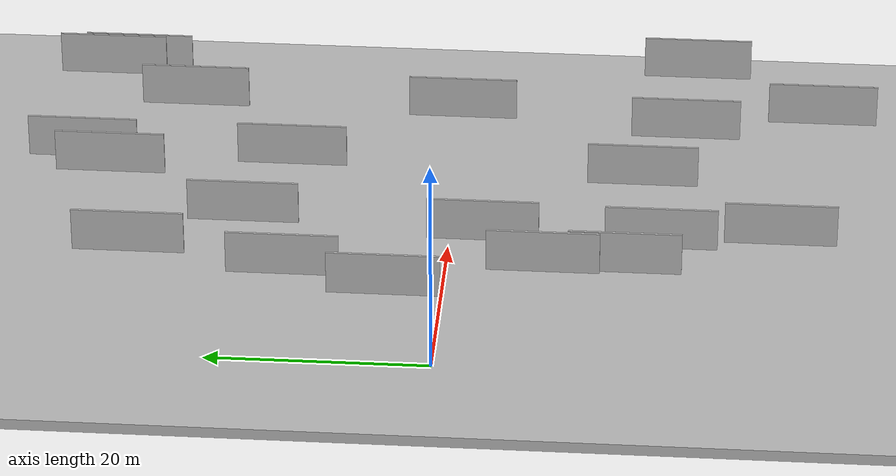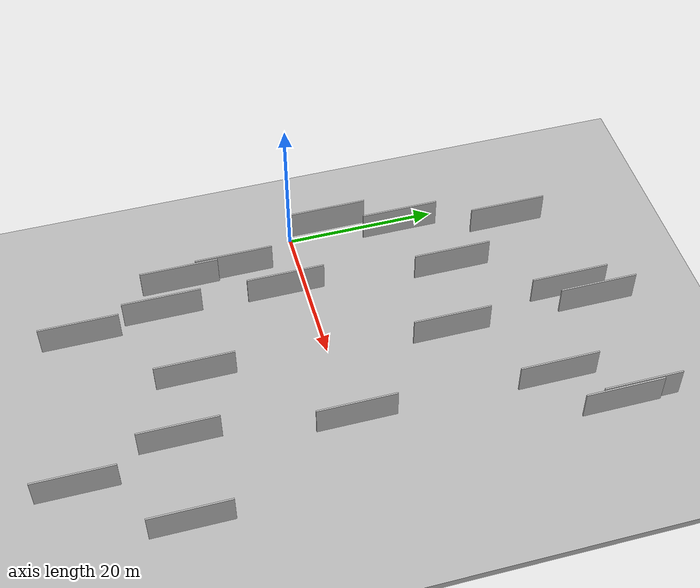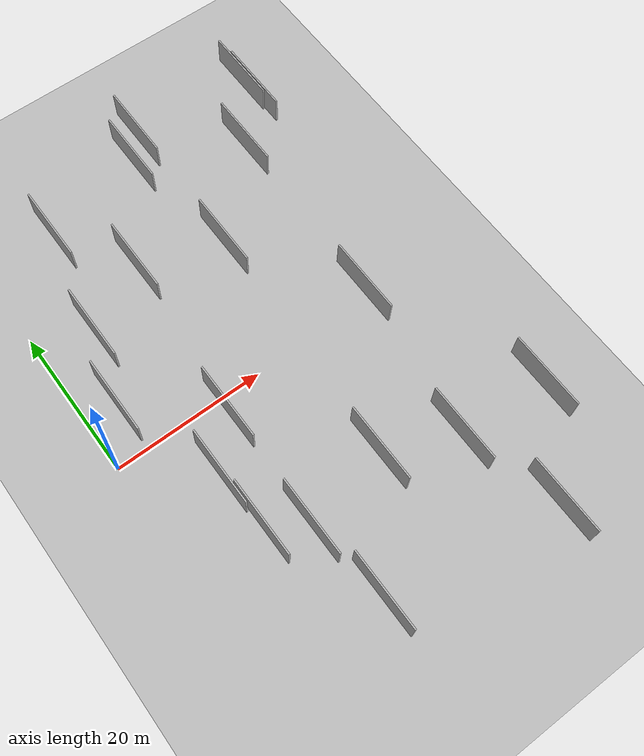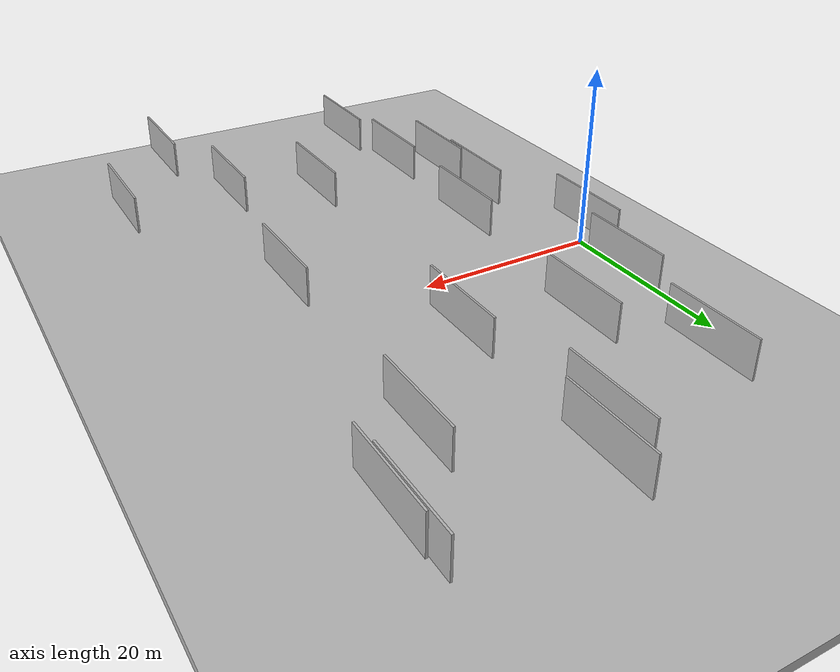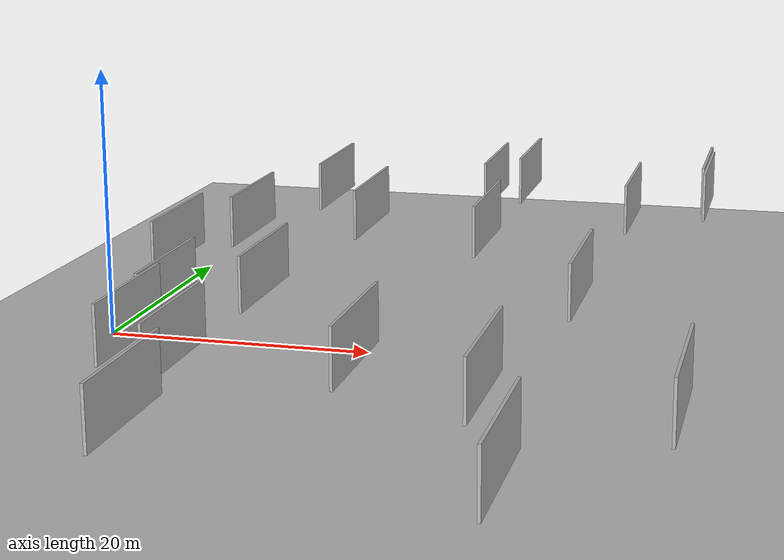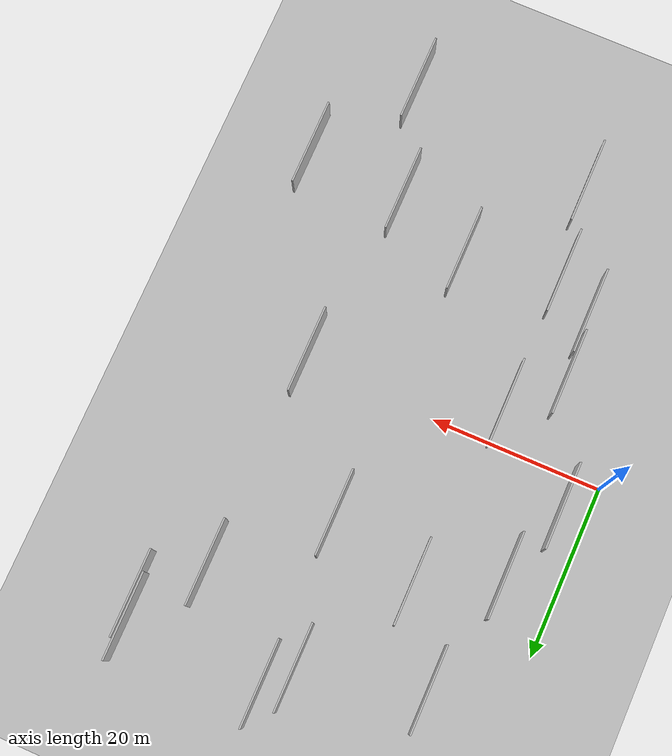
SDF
<?xml version="1.0" encoding="utf-8"?>

<sdf version="1.6">

   <world name="default">

      <gui fullscreen="0">

         <camera name="user_camera">

            <pose>-15 0 4.57585 0 0 0</pose>

            <view_controller>orbit</view_controller>

         </camera>

      </gui>

      <scene>

         <sky>

           <clouds>

             <speed>12</speed>

           </clouds>

         </sky>

         <ambient>0.4 0.4 0.4 1</ambient>

         <background>0.7 0.7 0.7 1</background>

         <shadows>1</shadows>

      </scene>

      <gravity>0 0 -9.8066</gravity>

      <magnetic_field>6e-06 2.3e-05 -4.2e-05</magnetic_field>

      <physics default="0" name="default_physics" type="ode">

         <ode>

            <solver>

               <type>quick</type>

               <iters>10</iters>

               <sor>1.0</sor>

               <use_dynamic_moi_rescaling>0</use_dynamic_moi_rescaling>

            </solver>

            <constraints>

               <cfm>0</cfm>

               <erp>0.2</erp>

               <contact_max_correcting_vel>100</contact_max_correcting_vel>

               <contact_surface_layer>0.001</contact_surface_layer>

            </constraints>

         </ode>

         <max_step_size>0.004</max_step_size>

         <real_time_factor>1</real_time_factor>

         <real_time_update_rate>250</real_time_update_rate>

      </physics>

      <light name="sun" type="directional">

         <cast_shadows>1</cast_shadows>

         <pose>0 0 10 0 0 0</pose>

         <diffuse>0.8 0.8 0.8 1</diffuse>

         <specular>0.2 0.2 0.2 1</specular>

         <attenuation>

            <range>1000</range>

            <constant>0.9</constant>

            <linear>0.01</linear>

            <quadratic>0.001</quadratic>

         </attenuation>

         <direction>-0.5 0.1 -0.9</direction>

      </light>

      <include>

         <name>ground_plane_1</name>

         <uri>model://HANNAS_ground_plane</uri>

         <pose>0 0 0  0 0 0</pose>

      </include>

      <include>

         <name>ground_plane_2</name>

         <uri>model://HANNAS_ground_plane</uri>

         <pose>100 0 0  0 0 0</pose>

      </include>

      <model name="HANNAS_wall_1">

         <static>1</static>

         <pose frame="">32.9535 -21.0607 5.0 0.000000 0.000000 1.570796</pose>

         <link name="link">

            <pose frame="">0 0 2.00 0 0 0</pose>

            <collision name="collision">

               <geometry>

                  <box>

                     <size>10.00 0.2 4.00</size>

                  </box>

               </geometry>

               <max_contacts>10</max_contacts>

               <surface>

                  <contact>

                     <ode/>

                  </contact>

                  <bounce/>

                  <friction>

                     <torsional>

                        <ode/>

                     </torsional>

                     <ode/>

                  </friction>

               </surface>

            </collision>

            <visual name="visual">

               <cast_shadows>0</cast_shadows>

               <geometry>

                  <box>

                     <size>10.00 0.2 4.00</size>

                  </box>

               </geometry>

               <material>

                  <script>

                     <uri>model://HANNAS_wall/materials/scripts</uri>

                     <uri>model://HANNAS_wall/materials/textures</uri>

                     <name>vrc/HANNAS_wall</name>

                  </script>

               </material>

            </visual>

            <self_collide>0</self_collide>

            <enable_wind>0</enable_wind>

            <kinematic>0</kinematic>

         </link>

      </model>

      <model name="HANNAS_wall_2">

         <static>1</static>

         <pose frame="">8.8316 -16.3860 5.0 0.000000 0.000000 1.570796</pose>

         <link name="link">

            <pose frame="">0 0 2.00 0 0 0</pose>

            <collision name="collision">

               <geometry>

                  <box>

                     <size>10.00 0.2 4.00</size>

                  </box>

               </geometry>

               <max_contacts>10</max_contacts>

               <surface>

                  <contact>

                     <ode/>

                  </contact>

                  <bounce/>

                  <friction>

                     <torsional>

                        <ode/>

                     </torsional>

                     <ode/>

                  </friction>

               </surface>

            </collision>

            <visual name="visual">

               <cast_shadows>0</cast_shadows>

               <geometry>

                  <box>

                     <size>10.00 0.2 4.00</size>

                  </box>

               </geometry>

               <material>

                  <script>

                     <uri>model://HANNAS_wall/materials/scripts</uri>

                     <uri>model://HANNAS_wall/materials/textures</uri>

                     <name>vrc/HANNAS_wall</name>

                  </script>

               </material>

            </visual>

            <self_collide>0</self_collide>

            <enable_wind>0</enable_wind>

            <kinematic>0</kinematic>

         </link>

      </model>

      <model name="HANNAS_wall_3">

         <static>1</static>

         <pose frame="">8.4490 -9.2028 5.0 0.000000 0.000000 1.570796</pose>

         <link name="link">

            <pose frame="">0 0 2.00 0 0 0</pose>

            <collision name="collision">

               <geometry>

                  <box>

                     <size>10.00 0.2 4.00</size>

                  </box>

               </geometry>

               <max_contacts>10</max_contacts>

               <surface>

                  <contact>

                     <ode/>

                  </contact>

                  <bounce/>

                  <friction>

                     <torsional>

                        <ode/>

                     </torsional>

                     <ode/>

                  </friction>

               </surface>

            </collision>

            <visual name="visual">

               <cast_shadows>0</cast_shadows>

               <geometry>

                  <box>

                     <size>10.00 0.2 4.00</size>

                  </box>

               </geometry>

               <material>

                  <script>

                     <uri>model://HANNAS_wall/materials/scripts</uri>

                     <uri>model://HANNAS_wall/materials/textures</uri>

                     <name>vrc/HANNAS_wall</name>

                  </script>

               </material>

            </visual>

            <self_collide>0</self_collide>

            <enable_wind>0</enable_wind>

            <kinematic>0</kinematic>

         </link>

      </model>

      <model name="HANNAS_wall_4">

         <static>1</static>

         <pose frame="">44.4777 -21.8718 5.0 0.000000 0.000000 1.570796</pose>

         <link name="link">

            <pose frame="">0 0 2.00 0 0 0</pose>

            <collision name="collision">

               <geometry>

                  <box>

                     <size>10.00 0.2 4.00</size>

                  </box>

               </geometry>

               <max_contacts>10</max_contacts>

               <surface>

                  <contact>

                     <ode/>

                  </contact>

                  <bounce/>

                  <friction>

                     <torsional>

                        <ode/>

                     </torsional>

                     <ode/>

                  </friction>

               </surface>

            </collision>

            <visual name="visual">

               <cast_shadows>0</cast_shadows>

               <geometry>

                  <box>

                     <size>10.00 0.2 4.00</size>

                  </box>

               </geometry>

               <material>

                  <script>

                     <uri>model://HANNAS_wall/materials/scripts</uri>

                     <uri>model://HANNAS_wall/materials/textures</uri>

                     <name>vrc/HANNAS_wall</name>

                  </script>

               </material>

            </visual>

            <self_collide>0</self_collide>

            <enable_wind>0</enable_wind>

            <kinematic>0</kinematic>

         </link>

      </model>

      <model name="HANNAS_wall_5">

         <static>1</static>

         <pose frame="">15.1462 18.0571 5.0 0.000000 0.000000 1.570796</pose>

         <link name="link">

            <pose frame="">0 0 2.00 0 0 0</pose>

            <collision name="collision">

               <geometry>

                  <box>

                     <size>10.00 0.2 4.00</size>

                  </box>

               </geometry>

               <max_contacts>10</max_contacts>

               <surface>

                  <contact>

                     <ode/>

                  </contact>

                  <bounce/>

                  <friction>

                     <torsional>

                        <ode/>

                     </torsional>

                     <ode/>

                  </friction>

               </surface>

            </collision>

            <visual name="visual">

               <cast_shadows>0</cast_shadows>

               <geometry>

                  <box>

                     <size>10.00 0.2 4.00</size>

                  </box>

               </geometry>

               <material>

                  <script>

                     <uri>model://HANNAS_wall/materials/scripts</uri>

                     <uri>model://HANNAS_wall/materials/textures</uri>

                     <name>vrc/HANNAS_wall</name>

                  </script>

               </material>

            </visual>

            <self_collide>0</self_collide>

            <enable_wind>0</enable_wind>

            <kinematic>0</kinematic>

         </link>

      </model>

      <model name="HANNAS_wall_6">

         <static>1</static>

         <pose frame="">9.2437 27.6333 5.0 0.000000 0.000000 1.570796</pose>

         <link name="link">

            <pose frame="">0 0 2.00 0 0 0</pose>

            <collision name="collision">

               <geometry>

                  <box>

                     <size>10.00 0.2 4.00</size>

                  </box>

               </geometry>

               <max_contacts>10</max_contacts>

               <surface>

                  <contact>

                     <ode/>

                  </contact>

                  <bounce/>

                  <friction>

                     <torsional>

                        <ode/>

                     </torsional>

                     <ode/>

                  </friction>

               </surface>

            </collision>

            <visual name="visual">

               <cast_shadows>0</cast_shadows>

               <geometry>

                  <box>

                     <size>10.00 0.2 4.00</size>

                  </box>

               </geometry>

               <material>

                  <script>

                     <uri>model://HANNAS_wall/materials/scripts</uri>

                     <uri>model://HANNAS_wall/materials/textures</uri>

                     <name>vrc/HANNAS_wall</name>

                  </script>

               </material>

            </visual>

            <self_collide>0</self_collide>

            <enable_wind>0</enable_wind>

            <kinematic>0</kinematic>

         </link>

      </model>

      <model name="HANNAS_wall_7">

         <static>1</static>

         <pose frame="">35.8995 24.8506 5.0 0.000000 0.000000 1.570796</pose>

         <link name="link">

            <pose frame="">0 0 2.00 0 0 0</pose>

            <collision name="collision">

               <geometry>

                  <box>

                     <size>10.00 0.2 4.00</size>

                  </box>

               </geometry>

               <max_contacts>10</max_contacts>

               <surface>

                  <contact>

                     <ode/>

                  </contact>

                  <bounce/>

                  <friction>

                     <torsional>

                        <ode/>

                     </torsional>

                     <ode/>

                  </friction>

               </surface>

            </collision>

            <visual name="visual">

               <cast_shadows>0</cast_shadows>

               <geometry>

                  <box>

                     <size>10.00 0.2 4.00</size>

                  </box>

               </geometry>

               <material>

                  <script>

                     <uri>model://HANNAS_wall/materials/scripts</uri>

                     <uri>model://HANNAS_wall/materials/textures</uri>

                     <name>vrc/HANNAS_wall</name>

                  </script>

               </material>

            </visual>

            <self_collide>0</self_collide>

            <enable_wind>0</enable_wind>

            <kinematic>0</kinematic>

         </link>

      </model>

      <model name="HANNAS_wall_8">

         <static>1</static>

         <pose frame="">41.6824 30.8870 5.0 0.000000 0.000000 1.570796</pose>

         <link name="link">

            <pose frame="">0 0 2.00 0 0 0</pose>

            <collision name="collision">

               <geometry>

                  <box>

                     <size>10.00 0.2 4.00</size>

                  </box>

               </geometry>

               <max_contacts>10</max_contacts>

               <surface>

                  <contact>

                     <ode/>

                  </contact>

                  <bounce/>

                  <friction>

                     <torsional>

                        <ode/>

                     </torsional>

                     <ode/>

                  </friction>

               </surface>

            </collision>

            <visual name="visual">

               <cast_shadows>0</cast_shadows>

               <geometry>

                  <box>

                     <size>10.00 0.2 4.00</size>

                  </box>

               </geometry>

               <material>

                  <script>

                     <uri>model://HANNAS_wall/materials/scripts</uri>

                     <uri>model://HANNAS_wall/materials/textures</uri>

                     <name>vrc/HANNAS_wall</name>

                  </script>

               </material>

            </visual>

            <self_collide>0</self_collide>

            <enable_wind>0</enable_wind>

            <kinematic>0</kinematic>

         </link>

      </model>

      <model name="HANNAS_wall_9">

         <static>1</static>

         <pose frame="">3.6715 4.4663 5.0 0.000000 0.000000 1.570796</pose>

         <link name="link">

            <pose frame="">0 0 2.00 0 0 0</pose>

            <collision name="collision">

               <geometry>

                  <box>

                     <size>10.00 0.2 4.00</size>

                  </box>

               </geometry>

               <max_contacts>10</max_contacts>

               <surface>

                  <contact>

                     <ode/>

                  </contact>

                  <bounce/>

                  <friction>

                     <torsional>

                        <ode/>

                     </torsional>

                     <ode/>

                  </friction>

               </surface>

            </collision>

            <visual name="visual">

               <cast_shadows>0</cast_shadows>

               <geometry>

                  <box>

                     <size>10.00 0.2 4.00</size>

                  </box>

               </geometry>

               <material>

                  <script>

                     <uri>model://HANNAS_wall/materials/scripts</uri>

                     <uri>model://HANNAS_wall/materials/textures</uri>

                     <name>vrc/HANNAS_wall</name>

                  </script>

               </material>

            </visual>

            <self_collide>0</self_collide>

            <enable_wind>0</enable_wind>

            <kinematic>0</kinematic>

         </link>

      </model>

      <model name="HANNAS_wall_10">

         <static>1</static>

         <pose frame="">36.4802 -33.6578 5.0 0.000000 0.000000 1.570796</pose>

         <link name="link">

            <pose frame="">0 0 2.00 0 0 0</pose>

            <collision name="collision">

               <geometry>

                  <box>

                     <size>10.00 0.2 4.00</size>

                  </box>

               </geometry>

               <max_contacts>10</max_contacts>

               <surface>

                  <contact>

                     <ode/>

                  </contact>

                  <bounce/>

                  <friction>

                     <torsional>

                        <ode/>

                     </torsional>

                     <ode/>

                  </friction>

               </surface>

            </collision>

            <visual name="visual">

               <cast_shadows>0</cast_shadows>

               <geometry>

                  <box>

                     <size>10.00 0.2 4.00</size>

                  </box>

               </geometry>

               <material>

                  <script>

                     <uri>model://HANNAS_wall/materials/scripts</uri>

                     <uri>model://HANNAS_wall/materials/textures</uri>

                     <name>vrc/HANNAS_wall</name>

                  </script>

               </material>

            </visual>

            <self_collide>0</self_collide>

            <enable_wind>0</enable_wind>

            <kinematic>0</kinematic>

         </link>

      </model>

      <model name="HANNAS_wall_11">

         <static>1</static>

         <pose frame="">13.4114 -3.5660 5.0 0.000000 0.000000 1.570796</pose>

         <link name="link">

            <pose frame="">0 0 2.00 0 0 0</pose>

            <collision name="collision">

               <geometry>

                  <box>

                     <size>10.00 0.2 4.00</size>

                  </box>

               </geometry>

               <max_contacts>10</max_contacts>

               <surface>

                  <contact>

                     <ode/>

                  </contact>

                  <bounce/>

                  <friction>

                     <torsional>

                        <ode/>

                     </torsional>

                     <ode/>

                  </friction>

               </surface>

            </collision>

            <visual name="visual">

               <cast_shadows>0</cast_shadows>

               <geometry>

                  <box>

                     <size>10.00 0.2 4.00</size>

                  </box>

               </geometry>

               <material>

                  <script>

                     <uri>model://HANNAS_wall/materials/scripts</uri>

                     <uri>model://HANNAS_wall/materials/textures</uri>

                     <name>vrc/HANNAS_wall</name>

                  </script>

               </material>

            </visual>

            <self_collide>0</self_collide>

            <enable_wind>0</enable_wind>

            <kinematic>0</kinematic>

         </link>

      </model>

      <model name="HANNAS_wall_12">

         <static>1</static>

         <pose frame="">23.0033 31.1324 5.0 0.000000 0.000000 1.570796</pose>

         <link name="link">

            <pose frame="">0 0 2.00 0 0 0</pose>

            <collision name="collision">

               <geometry>

                  <box>

                     <size>10.00 0.2 4.00</size>

                  </box>

               </geometry>

               <max_contacts>10</max_contacts>

               <surface>

                  <contact>

                     <ode/>

                  </contact>

                  <bounce/>

                  <friction>

                     <torsional>

                        <ode/>

                     </torsional>

                     <ode/>

                  </friction>

               </surface>

            </collision>

            <visual name="visual">

               <cast_shadows>0</cast_shadows>

               <geometry>

                  <box>

                     <size>10.00 0.2 4.00</size>

                  </box>

               </geometry>

               <material>

                  <script>

                     <uri>model://HANNAS_wall/materials/scripts</uri>

                     <uri>model://HANNAS_wall/materials/textures</uri>

                     <name>vrc/HANNAS_wall</name>

                  </script>

               </material>

            </visual>

            <self_collide>0</self_collide>

            <enable_wind>0</enable_wind>

            <kinematic>0</kinematic>

         </link>

      </model>

      <model name="HANNAS_wall_13">

         <static>1</static>

         <pose frame="">14.5856 -30.0116 5.0 0.000000 0.000000 1.570796</pose>

         <link name="link">

            <pose frame="">0 0 2.00 0 0 0</pose>

            <collision name="collision">

               <geometry>

                  <box>

                     <size>10.00 0.2 4.00</size>

                  </box>

               </geometry>

               <max_contacts>10</max_contacts>

               <surface>

                  <contact>

                     <ode/>

                  </contact>

                  <bounce/>

                  <friction>

                     <torsional>

                        <ode/>

                     </torsional>

                     <ode/>

                  </friction>

               </surface>

            </collision>

            <visual name="visual">

               <cast_shadows>0</cast_shadows>

               <geometry>

                  <box>

                     <size>10.00 0.2 4.00</size>

                  </box>

               </geometry>

               <material>

                  <script>

                     <uri>model://HANNAS_wall/materials/scripts</uri>

                     <uri>model://HANNAS_wall/materials/textures</uri>

                     <name>vrc/HANNAS_wall</name>

                  </script>

               </material>

            </visual>

            <self_collide>0</self_collide>

            <enable_wind>0</enable_wind>

            <kinematic>0</kinematic>

         </link>

      </model>

      <model name="HANNAS_wall_14">

         <static>1</static>

         <pose frame="">13.1653 -19.4418 5.0 0.000000 0.000000 1.570796</pose>

         <link name="link">

            <pose frame="">0 0 2.00 0 0 0</pose>

            <collision name="collision">

               <geometry>

                  <box>

                     <size>10.00 0.2 4.00</size>

                  </box>

               </geometry>

               <max_contacts>10</max_contacts>

               <surface>

                  <contact>

                     <ode/>

                  </contact>

                  <bounce/>

                  <friction>

                     <torsional>

                        <ode/>

                     </torsional>

                     <ode/>

                  </friction>

               </surface>

            </collision>

            <visual name="visual">

               <cast_shadows>0</cast_shadows>

               <geometry>

                  <box>

                     <size>10.00 0.2 4.00</size>

                  </box>

               </geometry>

               <material>

                  <script>

                     <uri>model://HANNAS_wall/materials/scripts</uri>

                     <uri>model://HANNAS_wall/materials/textures</uri>

                     <name>vrc/HANNAS_wall</name>

                  </script>

               </material>

            </visual>

            <self_collide>0</self_collide>

            <enable_wind>0</enable_wind>

            <kinematic>0</kinematic>

         </link>

      </model>

      <model name="HANNAS_wall_15">

         <static>1</static>

         <pose frame="">6.4201 13.6086 5.0 0.000000 0.000000 1.570796</pose>

         <link name="link">

            <pose frame="">0 0 2.00 0 0 0</pose>

            <collision name="collision">

               <geometry>

                  <box>

                     <size>10.00 0.2 4.00</size>

                  </box>

               </geometry>

               <max_contacts>10</max_contacts>

               <surface>

                  <contact>

                     <ode/>

                  </contact>

                  <bounce/>

                  <friction>

                     <torsional>

                        <ode/>

                     </torsional>

                     <ode/>

                  </friction>

               </surface>

            </collision>

            <visual name="visual">

               <cast_shadows>0</cast_shadows>

               <geometry>

                  <box>

                     <size>10.00 0.2 4.00</size>

                  </box>

               </geometry>

               <material>

                  <script>

                     <uri>model://HANNAS_wall/materials/scripts</uri>

                     <uri>model://HANNAS_wall/materials/textures</uri>

                     <name>vrc/HANNAS_wall</name>

                  </script>

               </material>

            </visual>

            <self_collide>0</self_collide>

            <enable_wind>0</enable_wind>

            <kinematic>0</kinematic>

         </link>

      </model>

      <model name="HANNAS_wall_16">

         <static>1</static>

         <pose frame="">25.5684 14.7113 5.0 0.000000 0.000000 1.570796</pose>

         <link name="link">

            <pose frame="">0 0 2.00 0 0 0</pose>

            <collision name="collision">

               <geometry>

                  <box>

                     <size>10.00 0.2 4.00</size>

                  </box>

               </geometry>

               <max_contacts>10</max_contacts>

               <surface>

                  <contact>

                     <ode/>

                  </contact>

                  <bounce/>

                  <friction>

                     <torsional>

                        <ode/>

                     </torsional>

                     <ode/>

                  </friction>

               </surface>

            </collision>

            <visual name="visual">

               <cast_shadows>0</cast_shadows>

               <geometry>

                  <box>

                     <size>10.00 0.2 4.00</size>

                  </box>

               </geometry>

               <material>

                  <script>

                     <uri>model://HANNAS_wall/materials/scripts</uri>

                     <uri>model://HANNAS_wall/materials/textures</uri>

                     <name>vrc/HANNAS_wall</name>

                  </script>

               </material>

            </visual>

            <self_collide>0</self_collide>

            <enable_wind>0</enable_wind>

            <kinematic>0</kinematic>

         </link>

      </model>

      <model name="HANNAS_wall_17">

         <static>1</static>

         <pose frame="">24.1335 -17.4057 5.0 0.000000 0.000000 1.570796</pose>

         <link name="link">

            <pose frame="">0 0 2.00 0 0 0</pose>

            <collision name="collision">

               <geometry>

                  <box>

                     <size>10.00 0.2 4.00</size>

                  </box>

               </geometry>

               <max_contacts>10</max_contacts>

               <surface>

                  <contact>

                     <ode/>

                  </contact>

                  <bounce/>

                  <friction>

                     <torsional>

                        <ode/>

                     </torsional>

                     <ode/>

                  </friction>

               </surface>

            </collision>

            <visual name="visual">

               <cast_shadows>0</cast_shadows>

               <geometry>

                  <box>

                     <size>10.00 0.2 4.00</size>

                  </box>

               </geometry>

               <material>

                  <script>

                     <uri>model://HANNAS_wall/materials/scripts</uri>

                     <uri>model://HANNAS_wall/materials/textures</uri>

                     <name>vrc/HANNAS_wall</name>

                  </script>

               </material>

            </visual>

            <self_collide>0</self_collide>

            <enable_wind>0</enable_wind>

            <kinematic>0</kinematic>

         </link>

      </model>

      <model name="HANNAS_wall_18">

         <static>1</static>

         <pose frame="">25.5372 33.9854 5.0 0.000000 0.000000 1.570796</pose>

         <link name="link">

            <pose frame="">0 0 2.00 0 0 0</pose>

            <collision name="collision">

               <geometry>

                  <box>

                     <size>10.00 0.2 4.00</size>

                  </box>

               </geometry>

               <max_contacts>10</max_contacts>

               <surface>

                  <contact>

                     <ode/>

                  </contact>

                  <bounce/>

                  <friction>

                     <torsional>

                        <ode/>

                     </torsional>

                     <ode/>

                  </friction>

               </surface>

            </collision>

            <visual name="visual">

               <cast_shadows>0</cast_shadows>

               <geometry>

                  <box>

                     <size>10.00 0.2 4.00</size>

                  </box>

               </geometry>

               <material>

                  <script>

                     <uri>model://HANNAS_wall/materials/scripts</uri>

                     <uri>model://HANNAS_wall/materials/textures</uri>

                     <name>vrc/HANNAS_wall</name>

                  </script>

               </material>

            </visual>

            <self_collide>0</self_collide>

            <enable_wind>0</enable_wind>

            <kinematic>0</kinematic>

         </link>

      </model>

      <model name="HANNAS_wall_19">

         <static>1</static>

         <pose frame="">35.3776 -0.2520 5.0 0.000000 0.000000 1.570796</pose>

         <link name="link">

            <pose frame="">0 0 2.00 0 0 0</pose>

            <collision name="collision">

               <geometry>

                  <box>

                     <size>10.00 0.2 4.00</size>

                  </box>

               </geometry>

               <max_contacts>10</max_contacts>

               <surface>

                  <contact>

                     <ode/>

                  </contact>

                  <bounce/>

                  <friction>

                     <torsional>

                        <ode/>

                     </torsional>

                     <ode/>

                  </friction>

               </surface>

            </collision>

            <visual name="visual">

               <cast_shadows>0</cast_shadows>

               <geometry>

                  <box>

                     <size>10.00 0.2 4.00</size>

                  </box>

               </geometry>

               <material>

                  <script>

                     <uri>model://HANNAS_wall/materials/scripts</uri>

                     <uri>model://HANNAS_wall/materials/textures</uri>

                     <name>vrc/HANNAS_wall</name>

                  </script>

               </material>

            </visual>

            <self_collide>0</self_collide>

            <enable_wind>0</enable_wind>

            <kinematic>0</kinematic>

         </link>

      </model>

      <model name="HANNAS_wall_20">

         <static>1</static>

         <pose frame="">41.3711 33.3313 5.0 0.000000 0.000000 1.570796</pose>

         <link name="link">

            <pose frame="">0 0 2.00 0 0 0</pose>

            <collision name="collision">

               <geometry>

                  <box>

                     <size>10.00 0.2 4.00</size>

                  </box>

               </geometry>

               <max_contacts>10</max_contacts>

               <surface>

                  <contact>

                     <ode/>

                  </contact>

                  <bounce/>

                  <friction>

                     <torsional>

                        <ode/>

                     </torsional>

                     <ode/>

                  </friction>

               </surface>

            </collision>

            <visual name="visual">

               <cast_shadows>0</cast_shadows>

               <geometry>

                  <box>

                     <size>10.00 0.2 4.00</size>

                  </box>

               </geometry>

               <material>

                  <script>

                     <uri>model://HANNAS_wall/materials/scripts</uri>

                     <uri>model://HANNAS_wall/materials/textures</uri>

                     <name>vrc/HANNAS_wall</name>

                  </script>

               </material>

            </visual>

            <self_collide>0</self_collide>

            <enable_wind>0</enable_wind>

            <kinematic>0</kinematic>

         </link>

      </model>

   </world>

</sdf>

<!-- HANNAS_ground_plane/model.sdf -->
<sdf version="1.4">
<model name="HANNAS_ground_plane">
  <static>true</static>
    <link name="link">
      <collision name="collision">
        <geometry>
          <plane>
            <normal>0 0 1</normal>
            <size>1000 1000</size>
          </plane>
        </geometry>
        <surface>
          <friction>
            <ode>
              <mu>100</mu>
              <mu2>50</mu2>
            </ode>
          </friction>
        </surface>
      </collision>
      <visual name="visual">
        <cast_shadows>false</cast_shadows>
        <geometry>
          <plane>
            <normal>0 0 1</normal>
            <size>1000 1000</size>
          </plane>
        </geometry>
        <material>
          <script>
            <uri>model://HANNAS_ground_plane/materials/scripts/HANNAS_ground_plane.material</uri>
	    <uri>model://HANNAS_ground_plane/materials/textures</uri>
            <name>HANNASGroundPlane/Image</name>
          </script>
        </material>
      </visual>
    </link>
  </model>
</sdf>
